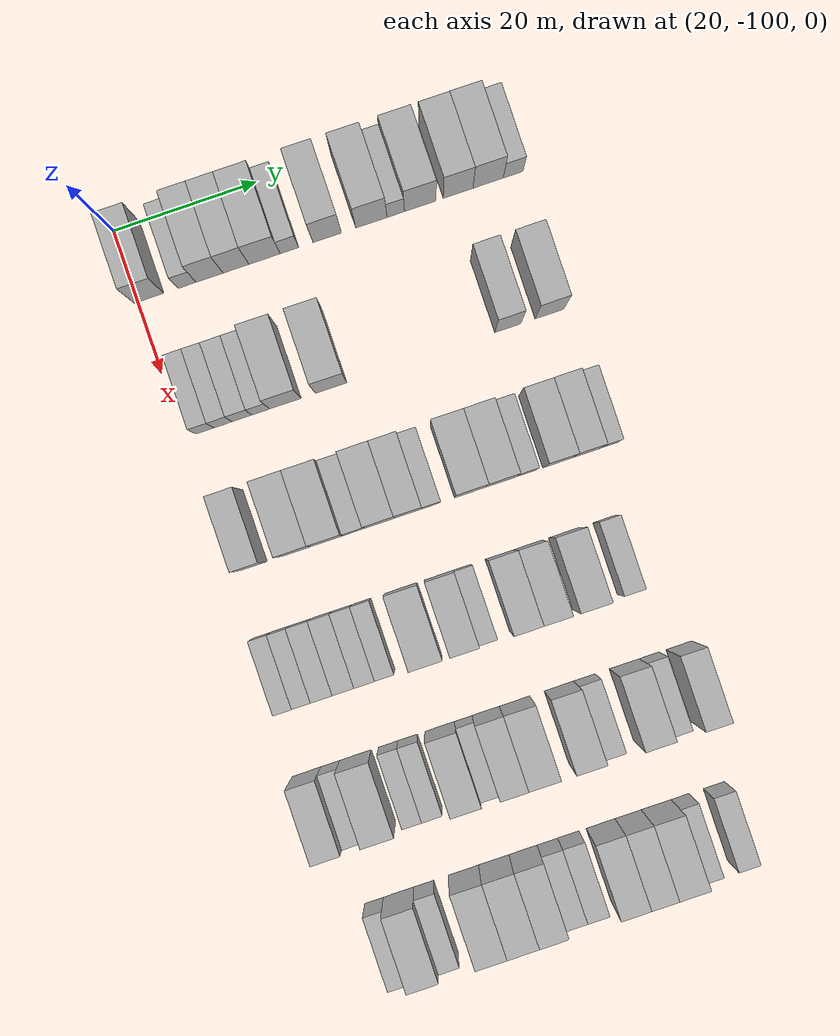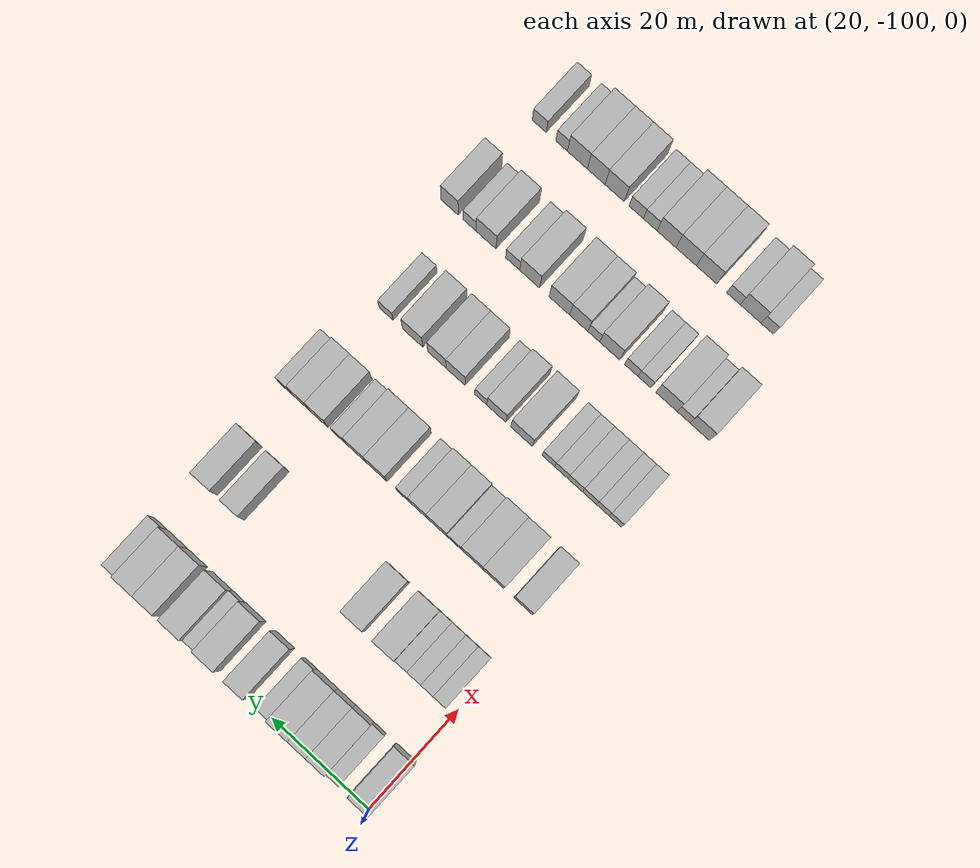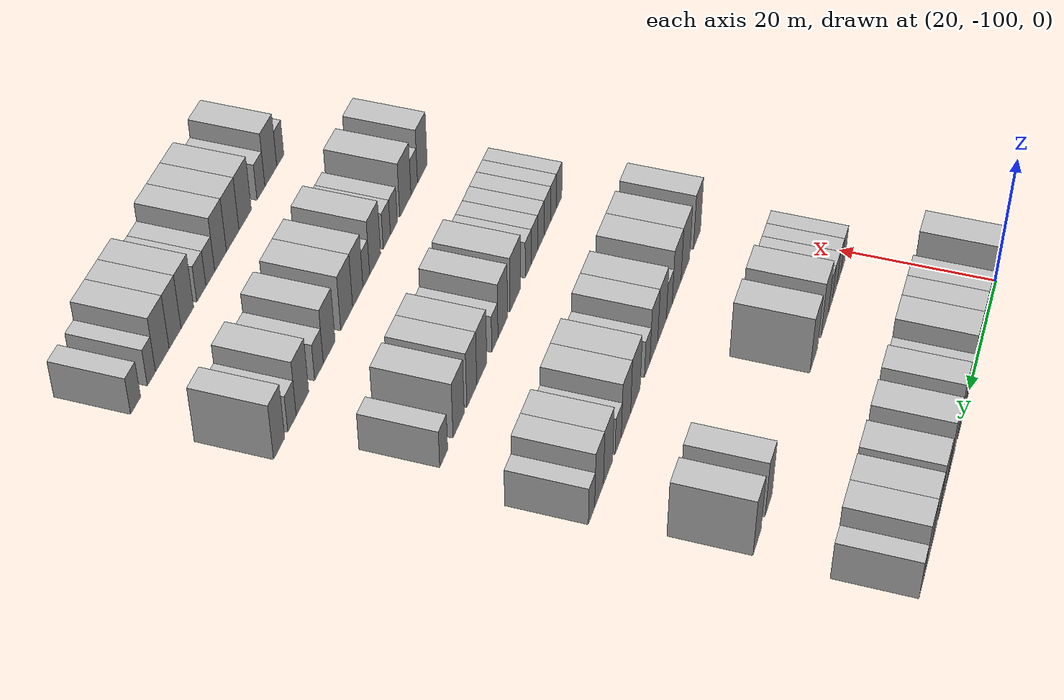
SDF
<sdf version="1.6">
 <world name="default">
  <model name="building_61">
   <static>1</static>
   <pose>25.0000 -98.3839 0 0.000000 0.000000 0.000000</pose>
   <link name="link">
    <pose>0 0 4.50 0 0 0</pose>
    <collision name="collision"><geometry><box><size>10.0000 4.1209 9.0000</size></box></geometry></collision>
    <visual name="visual">
     <cast_shadows>0</cast_shadows>
     <geometry><box><size>10.0000 4.1209 9.0000</size></box></geometry>
     <material>
      <script>
       <uri>model://HANNAS_wall/materials/scripts</uri>
       <uri>model://HANNAS_wall/materials/textures</uri>
       <name>vrc/HANNAS_wall</name>
      </script>
     </material>
    </visual>
   </link>
  </model>
  <model name="building_62">
   <static>1</static>
   <pose>25.0000 -93.0656 0 0.000000 0.000000 0.000000</pose>
   <link name="link">
    <pose>0 0 3.00 0 0 0</pose>
    <collision name="collision"><geometry><box><size>10.0000 2.5155 6.0000</size></box></geometry></collision>
    <visual name="visual">
     <cast_shadows>0</cast_shadows>
     <geometry><box><size>10.0000 2.5155 6.0000</size></box></geometry>
     <material>
      <script>
       <uri>model://HANNAS_wall/materials/scripts</uri>
       <uri>model://HANNAS_wall/materials/textures</uri>
       <name>vrc/HANNAS_wall</name>
      </script>
     </material>
    </visual>
   </link>
  </model>
  <model name="building_63">
   <static>1</static>
   <pose>25.0000 -89.9229 0 0.000000 0.000000 0.000000</pose>
   <link name="link">
    <pose>0 0 4.50 0 0 0</pose>
    <collision name="collision"><geometry><box><size>10.0000 3.7698 9.0000</size></box></geometry></collision>
    <visual name="visual">
     <cast_shadows>0</cast_shadows>
     <geometry><box><size>10.0000 3.7698 9.0000</size></box></geometry>
     <material>
      <script>
       <uri>model://HANNAS_wall/materials/scripts</uri>
       <uri>model://HANNAS_wall/materials/textures</uri>
       <name>vrc/HANNAS_wall</name>
      </script>
     </material>
    </visual>
   </link>
  </model>
  <model name="building_64">
   <static>1</static>
   <pose>25.0000 -86.2341 0 0.000000 0.000000 0.000000</pose>
   <link name="link">
    <pose>0 0 4.50 0 0 0</pose>
    <collision name="collision"><geometry><box><size>10.0000 3.6079 9.0000</size></box></geometry></collision>
    <visual name="visual">
     <cast_shadows>0</cast_shadows>
     <geometry><box><size>10.0000 3.6079 9.0000</size></box></geometry>
     <material>
      <script>
       <uri>model://HANNAS_wall/materials/scripts</uri>
       <uri>model://HANNAS_wall/materials/textures</uri>
       <name>vrc/HANNAS_wall</name>
      </script>
     </material>
    </visual>
   </link>
  </model>
  <model name="building_65">
   <static>1</static>
   <pose>25.0000 -82.2392 0 0.000000 0.000000 0.000000</pose>
   <link name="link">
    <pose>0 0 4.50 0 0 0</pose>
    <collision name="collision"><geometry><box><size>10.0000 4.3819 9.0000</size></box></geometry></collision>
    <visual name="visual">
     <cast_shadows>0</cast_shadows>
     <geometry><box><size>10.0000 4.3819 9.0000</size></box></geometry>
     <material>
      <script>
       <uri>model://HANNAS_wall/materials/scripts</uri>
       <uri>model://HANNAS_wall/materials/textures</uri>
       <name>vrc/HANNAS_wall</name>
      </script>
     </material>
    </visual>
   </link>
  </model>
  <model name="building_66">
   <static>1</static>
   <pose>25.0000 -78.7629 0 0.000000 0.000000 0.000000</pose>
   <link name="link">
    <pose>0 0 3.00 0 0 0</pose>
    <collision name="collision"><geometry><box><size>10.0000 2.5707 6.0000</size></box></geometry></collision>
    <visual name="visual">
     <cast_shadows>0</cast_shadows>
     <geometry><box><size>10.0000 2.5707 6.0000</size></box></geometry>
     <material>
      <script>
       <uri>model://HANNAS_wall/materials/scripts</uri>
       <uri>model://HANNAS_wall/materials/textures</uri>
       <name>vrc/HANNAS_wall</name>
      </script>
     </material>
    </visual>
   </link>
  </model>
  <model name="building_67">
   <static>1</static>
   <pose>25.0000 -73.4974 0 0.000000 0.000000 0.000000</pose>
   <link name="link">
    <pose>0 0 4.50 0 0 0</pose>
    <collision name="collision"><geometry><box><size>10.0000 3.9603 9.0000</size></box></geometry></collision>
    <visual name="visual">
     <cast_shadows>0</cast_shadows>
     <geometry><box><size>10.0000 3.9603 9.0000</size></box></geometry>
     <material>
      <script>
       <uri>model://HANNAS_wall/materials/scripts</uri>
       <uri>model://HANNAS_wall/materials/textures</uri>
       <name>vrc/HANNAS_wall</name>
      </script>
     </material>
    </visual>
   </link>
  </model>
  <model name="building_68">
   <static>1</static>
   <pose>25.0000 -67.3333 0 0.000000 0.000000 0.000000</pose>
   <link name="link">
    <pose>0 0 4.50 0 0 0</pose>
    <collision name="collision"><geometry><box><size>10.0000 4.3679 9.0000</size></box></geometry></collision>
    <visual name="visual">
     <cast_shadows>0</cast_shadows>
     <geometry><box><size>10.0000 4.3679 9.0000</size></box></geometry>
     <material>
      <script>
       <uri>model://HANNAS_wall/materials/scripts</uri>
       <uri>model://HANNAS_wall/materials/textures</uri>
       <name>vrc/HANNAS_wall</name>
      </script>
     </material>
    </visual>
   </link>
  </model>
  <model name="building_69">
   <static>1</static>
   <pose>25.0000 -63.9285 0 0.000000 0.000000 0.000000</pose>
   <link name="link">
    <pose>0 0 3.00 0 0 0</pose>
    <collision name="collision"><geometry><box><size>10.0000 2.4416 6.0000</size></box></geometry></collision>
    <visual name="visual">
     <cast_shadows>0</cast_shadows>
     <geometry><box><size>10.0000 2.4416 6.0000</size></box></geometry>
     <material>
      <script>
       <uri>model://HANNAS_wall/materials/scripts</uri>
       <uri>model://HANNAS_wall/materials/textures</uri>
       <name>vrc/HANNAS_wall</name>
      </script>
     </material>
    </visual>
   </link>
  </model>
  <model name="building_70">
   <static>1</static>
   <pose>25.0000 -60.5088 0 0.000000 0.000000 0.000000</pose>
   <link name="link">
    <pose>0 0 4.50 0 0 0</pose>
    <collision name="collision"><geometry><box><size>10.0000 4.3978 9.0000</size></box></geometry></collision>
    <visual name="visual">
     <cast_shadows>0</cast_shadows>
     <geometry><box><size>10.0000 4.3978 9.0000</size></box></geometry>
     <material>
      <script>
       <uri>model://HANNAS_wall/materials/scripts</uri>
       <uri>model://HANNAS_wall/materials/textures</uri>
       <name>vrc/HANNAS_wall</name>
      </script>
     </material>
    </visual>
   </link>
  </model>
  <model name="building_71">
   <static>1</static>
   <pose>25.0000 -55.2365 0 0.000000 0.000000 0.000000</pose>
   <link name="link">
    <pose>0 0 4.50 0 0 0</pose>
    <collision name="collision"><geometry><box><size>10.0000 4.1468 9.0000</size></box></geometry></collision>
    <visual name="visual">
     <cast_shadows>0</cast_shadows>
     <geometry><box><size>10.0000 4.1468 9.0000</size></box></geometry>
     <material>
      <script>
       <uri>model://HANNAS_wall/materials/scripts</uri>
       <uri>model://HANNAS_wall/materials/textures</uri>
       <name>vrc/HANNAS_wall</name>
      </script>
     </material>
    </visual>
   </link>
  </model>
  <model name="building_72">
   <static>1</static>
   <pose>25.0000 -51.0389 0 0.000000 0.000000 0.000000</pose>
   <link name="link">
    <pose>0 0 4.50 0 0 0</pose>
    <collision name="collision"><geometry><box><size>10.0000 4.2485 9.0000</size></box></geometry></collision>
    <visual name="visual">
     <cast_shadows>0</cast_shadows>
     <geometry><box><size>10.0000 4.2485 9.0000</size></box></geometry>
     <material>
      <script>
       <uri>model://HANNAS_wall/materials/scripts</uri>
       <uri>model://HANNAS_wall/materials/textures</uri>
       <name>vrc/HANNAS_wall</name>
      </script>
     </material>
    </visual>
   </link>
  </model>
  <model name="building_73">
   <static>1</static>
   <pose>25.0000 -47.5366 0 0.000000 0.000000 0.000000</pose>
   <link name="link">
    <pose>0 0 3.00 0 0 0</pose>
    <collision name="collision"><geometry><box><size>10.0000 2.7559 6.0000</size></box></geometry></collision>
    <visual name="visual">
     <cast_shadows>0</cast_shadows>
     <geometry><box><size>10.0000 2.7559 6.0000</size></box></geometry>
     <material>
      <script>
       <uri>model://HANNAS_wall/materials/scripts</uri>
       <uri>model://HANNAS_wall/materials/textures</uri>
       <name>vrc/HANNAS_wall</name>
      </script>
     </material>
    </visual>
   </link>
  </model>
  <model name="building_241">
   <static>1</static>
   <pose>44.0000 -96.9833 0 0.000000 0.000000 0.000000</pose>
   <link name="link">
    <pose>0 0 3.00 0 0 0</pose>
    <collision name="collision"><geometry><box><size>10.0000 2.5316 6.0000</size></box></geometry></collision>
    <visual name="visual">
     <cast_shadows>0</cast_shadows>
     <geometry><box><size>10.0000 2.5316 6.0000</size></box></geometry>
     <material>
      <script>
       <uri>model://HANNAS_wall/materials/scripts</uri>
       <uri>model://HANNAS_wall/materials/textures</uri>
       <name>vrc/HANNAS_wall</name>
      </script>
     </material>
    </visual>
   </link>
  </model>
  <model name="building_242">
   <static>1</static>
   <pose>44.0000 -94.4695 0 0.000000 0.000000 0.000000</pose>
   <link name="link">
    <pose>0 0 3.00 0 0 0</pose>
    <collision name="collision"><geometry><box><size>10.0000 2.4959 6.0000</size></box></geometry></collision>
    <visual name="visual">
     <cast_shadows>0</cast_shadows>
     <geometry><box><size>10.0000 2.4959 6.0000</size></box></geometry>
     <material>
      <script>
       <uri>model://HANNAS_wall/materials/scripts</uri>
       <uri>model://HANNAS_wall/materials/textures</uri>
       <name>vrc/HANNAS_wall</name>
      </script>
     </material>
    </visual>
   </link>
  </model>
  <model name="building_243">
   <static>1</static>
   <pose>44.0000 -91.8361 0 0.000000 0.000000 0.000000</pose>
   <link name="link">
    <pose>0 0 3.00 0 0 0</pose>
    <collision name="collision"><geometry><box><size>10.0000 2.7709 6.0000</size></box></geometry></collision>
    <visual name="visual">
     <cast_shadows>0</cast_shadows>
     <geometry><box><size>10.0000 2.7709 6.0000</size></box></geometry>
     <material>
      <script>
       <uri>model://HANNAS_wall/materials/scripts</uri>
       <uri>model://HANNAS_wall/materials/textures</uri>
       <name>vrc/HANNAS_wall</name>
      </script>
     </material>
    </visual>
   </link>
  </model>
  <model name="building_244">
   <static>1</static>
   <pose>44.0000 -89.2175 0 0.000000 0.000000 0.000000</pose>
   <link name="link">
    <pose>0 0 3.00 0 0 0</pose>
    <collision name="collision"><geometry><box><size>10.0000 2.4664 6.0000</size></box></geometry></collision>
    <visual name="visual">
     <cast_shadows>0</cast_shadows>
     <geometry><box><size>10.0000 2.4664 6.0000</size></box></geometry>
     <material>
      <script>
       <uri>model://HANNAS_wall/materials/scripts</uri>
       <uri>model://HANNAS_wall/materials/textures</uri>
       <name>vrc/HANNAS_wall</name>
      </script>
     </material>
    </visual>
   </link>
  </model>
  <model name="building_245">
   <static>1</static>
   <pose>44.0000 -85.7880 0 0.000000 0.000000 0.000000</pose>
   <link name="link">
    <pose>0 0 4.50 0 0 0</pose>
    <collision name="collision"><geometry><box><size>10.0000 4.3926 9.0000</size></box></geometry></collision>
    <visual name="visual">
     <cast_shadows>0</cast_shadows>
     <geometry><box><size>10.0000 4.3926 9.0000</size></box></geometry>
     <material>
      <script>
       <uri>model://HANNAS_wall/materials/scripts</uri>
       <uri>model://HANNAS_wall/materials/textures</uri>
       <name>vrc/HANNAS_wall</name>
      </script>
     </material>
    </visual>
   </link>
  </model>
  <model name="building_246">
   <static>1</static>
   <pose>44.0000 -79.3942 0 0.000000 0.000000 0.000000</pose>
   <link name="link">
    <pose>0 0 4.50 0 0 0</pose>
    <collision name="collision"><geometry><box><size>10.0000 4.3949 9.0000</size></box></geometry></collision>
    <visual name="visual">
     <cast_shadows>0</cast_shadows>
     <geometry><box><size>10.0000 4.3949 9.0000</size></box></geometry>
     <material>
      <script>
       <uri>model://HANNAS_wall/materials/scripts</uri>
       <uri>model://HANNAS_wall/materials/textures</uri>
       <name>vrc/HANNAS_wall</name>
      </script>
     </material>
    </visual>
   </link>
  </model>
  <model name="building_247">
   <static>1</static>
   <pose>44.0000 -54.7488 0 0.000000 0.000000 0.000000</pose>
   <link name="link">
    <pose>0 0 4.50 0 0 0</pose>
    <collision name="collision"><geometry><box><size>10.0000 3.6320 9.0000</size></box></geometry></collision>
    <visual name="visual">
     <cast_shadows>0</cast_shadows>
     <geometry><box><size>10.0000 3.6320 9.0000</size></box></geometry>
     <material>
      <script>
       <uri>model://HANNAS_wall/materials/scripts</uri>
       <uri>model://HANNAS_wall/materials/textures</uri>
       <name>vrc/HANNAS_wall</name>
      </script>
     </material>
    </visual>
   </link>
  </model>
  <model name="building_248">
   <static>1</static>
   <pose>44.0000 -48.9258 0 0.000000 0.000000 0.000000</pose>
   <link name="link">
    <pose>0 0 4.50 0 0 0</pose>
    <collision name="collision"><geometry><box><size>10.0000 4.0141 9.0000</size></box></geometry></collision>
    <visual name="visual">
     <cast_shadows>0</cast_shadows>
     <geometry><box><size>10.0000 4.0141 9.0000</size></box></geometry>
     <material>
      <script>
       <uri>model://HANNAS_wall/materials/scripts</uri>
       <uri>model://HANNAS_wall/materials/textures</uri>
       <name>vrc/HANNAS_wall</name>
      </script>
     </material>
    </visual>
   </link>
  </model>
  <model name="building_402">
   <static>1</static>
   <pose>63.0000 -96.6585 0 0.000000 0.000000 0.000000</pose>
   <link name="link">
    <pose>0 0 4.50 0 0 0</pose>
    <collision name="collision"><geometry><box><size>10.0000 3.7374 9.0000</size></box></geometry></collision>
    <visual name="visual">
     <cast_shadows>0</cast_shadows>
     <geometry><box><size>10.0000 3.7374 9.0000</size></box></geometry>
     <material>
      <script>
       <uri>model://HANNAS_wall/materials/scripts</uri>
       <uri>model://HANNAS_wall/materials/textures</uri>
       <name>vrc/HANNAS_wall</name>
      </script>
     </material>
    </visual>
   </link>
  </model>
  <model name="building_403">
   <static>1</static>
   <pose>63.0000 -90.5858 0 0.000000 0.000000 0.000000</pose>
   <link name="link">
    <pose>0 0 4.50 0 0 0</pose>
    <collision name="collision"><geometry><box><size>10.0000 4.4079 9.0000</size></box></geometry></collision>
    <visual name="visual">
     <cast_shadows>0</cast_shadows>
     <geometry><box><size>10.0000 4.4079 9.0000</size></box></geometry>
     <material>
      <script>
       <uri>model://HANNAS_wall/materials/scripts</uri>
       <uri>model://HANNAS_wall/materials/textures</uri>
       <name>vrc/HANNAS_wall</name>
      </script>
     </material>
    </visual>
   </link>
  </model>
  <model name="building_404">
   <static>1</static>
   <pose>63.0000 -86.1868 0 0.000000 0.000000 0.000000</pose>
   <link name="link">
    <pose>0 0 4.50 0 0 0</pose>
    <collision name="collision"><geometry><box><size>10.0000 4.3902 9.0000</size></box></geometry></collision>
    <visual name="visual">
     <cast_shadows>0</cast_shadows>
     <geometry><box><size>10.0000 4.3902 9.0000</size></box></geometry>
     <material>
      <script>
       <uri>model://HANNAS_wall/materials/scripts</uri>
       <uri>model://HANNAS_wall/materials/textures</uri>
       <name>vrc/HANNAS_wall</name>
      </script>
     </material>
    </visual>
   </link>
  </model>
  <model name="building_405">
   <static>1</static>
   <pose>63.0000 -82.5322 0 0.000000 0.000000 0.000000</pose>
   <link name="link">
    <pose>0 0 3.00 0 0 0</pose>
    <collision name="collision"><geometry><box><size>10.0000 2.9188 6.0000</size></box></geometry></collision>
    <visual name="visual">
     <cast_shadows>0</cast_shadows>
     <geometry><box><size>10.0000 2.9188 6.0000</size></box></geometry>
     <material>
      <script>
       <uri>model://HANNAS_wall/materials/scripts</uri>
       <uri>model://HANNAS_wall/materials/textures</uri>
       <name>vrc/HANNAS_wall</name>
      </script>
     </material>
    </visual>
   </link>
  </model>
  <model name="building_406">
   <static>1</static>
   <pose>63.0000 -78.9898 0 0.000000 0.000000 0.000000</pose>
   <link name="link">
    <pose>0 0 4.50 0 0 0</pose>
    <collision name="collision"><geometry><box><size>10.0000 4.1660 9.0000</size></box></geometry></collision>
    <visual name="visual">
     <cast_shadows>0</cast_shadows>
     <geometry><box><size>10.0000 4.1660 9.0000</size></box></geometry>
     <material>
      <script>
       <uri>model://HANNAS_wall/materials/scripts</uri>
       <uri>model://HANNAS_wall/materials/textures</uri>
       <name>vrc/HANNAS_wall</name>
      </script>
     </material>
    </visual>
   </link>
  </model>
  <model name="building_407">
   <static>1</static>
   <pose>63.0000 -75.0426 0 0.000000 0.000000 0.000000</pose>
   <link name="link">
    <pose>0 0 4.50 0 0 0</pose>
    <collision name="collision"><geometry><box><size>10.0000 3.7285 9.0000</size></box></geometry></collision>
    <visual name="visual">
     <cast_shadows>0</cast_shadows>
     <geometry><box><size>10.0000 3.7285 9.0000</size></box></geometry>
     <material>
      <script>
       <uri>model://HANNAS_wall/materials/scripts</uri>
       <uri>model://HANNAS_wall/materials/textures</uri>
       <name>vrc/HANNAS_wall</name>
      </script>
     </material>
    </visual>
   </link>
  </model>
  <model name="building_408">
   <static>1</static>
   <pose>63.0000 -71.9043 0 0.000000 0.000000 0.000000</pose>
   <link name="link">
    <pose>0 0 3.00 0 0 0</pose>
    <collision name="collision"><geometry><box><size>10.0000 2.5481 6.0000</size></box></geometry></collision>
    <visual name="visual">
     <cast_shadows>0</cast_shadows>
     <geometry><box><size>10.0000 2.5481 6.0000</size></box></geometry>
     <material>
      <script>
       <uri>model://HANNAS_wall/materials/scripts</uri>
       <uri>model://HANNAS_wall/materials/textures</uri>
       <name>vrc/HANNAS_wall</name>
      </script>
     </material>
    </visual>
   </link>
  </model>
  <model name="building_409">
   <static>1</static>
   <pose>63.0000 -66.4389 0 0.000000 0.000000 0.000000</pose>
   <link name="link">
    <pose>0 0 4.50 0 0 0</pose>
    <collision name="collision"><geometry><box><size>10.0000 4.3826 9.0000</size></box></geometry></collision>
    <visual name="visual">
     <cast_shadows>0</cast_shadows>
     <geometry><box><size>10.0000 4.3826 9.0000</size></box></geometry>
     <material>
      <script>
       <uri>model://HANNAS_wall/materials/scripts</uri>
       <uri>model://HANNAS_wall/materials/textures</uri>
       <name>vrc/HANNAS_wall</name>
      </script>
     </material>
    </visual>
   </link>
  </model>
  <model name="building_410">
   <static>1</static>
   <pose>63.0000 -62.1601 0 0.000000 0.000000 0.000000</pose>
   <link name="link">
    <pose>0 0 4.50 0 0 0</pose>
    <collision name="collision"><geometry><box><size>10.0000 4.1752 9.0000</size></box></geometry></collision>
    <visual name="visual">
     <cast_shadows>0</cast_shadows>
     <geometry><box><size>10.0000 4.1752 9.0000</size></box></geometry>
     <material>
      <script>
       <uri>model://HANNAS_wall/materials/scripts</uri>
       <uri>model://HANNAS_wall/materials/textures</uri>
       <name>vrc/HANNAS_wall</name>
      </script>
     </material>
    </visual>
   </link>
  </model>
  <model name="building_411">
   <static>1</static>
   <pose>63.0000 -58.6900 0 0.000000 0.000000 0.000000</pose>
   <link name="link">
    <pose>0 0 3.00 0 0 0</pose>
    <collision name="collision"><geometry><box><size>10.0000 2.7649 6.0000</size></box></geometry></collision>
    <visual name="visual">
     <cast_shadows>0</cast_shadows>
     <geometry><box><size>10.0000 2.7649 6.0000</size></box></geometry>
     <material>
      <script>
       <uri>model://HANNAS_wall/materials/scripts</uri>
       <uri>model://HANNAS_wall/materials/textures</uri>
       <name>vrc/HANNAS_wall</name>
      </script>
     </material>
    </visual>
   </link>
  </model>
  <model name="building_412">
   <static>1</static>
   <pose>63.0000 -54.3069 0 0.000000 0.000000 0.000000</pose>
   <link name="link">
    <pose>0 0 4.50 0 0 0</pose>
    <collision name="collision"><geometry><box><size>10.0000 4.0014 9.0000</size></box></geometry></collision>
    <visual name="visual">
     <cast_shadows>0</cast_shadows>
     <geometry><box><size>10.0000 4.0014 9.0000</size></box></geometry>
     <material>
      <script>
       <uri>model://HANNAS_wall/materials/scripts</uri>
       <uri>model://HANNAS_wall/materials/textures</uri>
       <name>vrc/HANNAS_wall</name>
      </script>
     </material>
    </visual>
   </link>
  </model>
  <model name="building_413">
   <static>1</static>
   <pose>63.0000 -50.4531 0 0.000000 0.000000 0.000000</pose>
   <link name="link">
    <pose>0 0 4.50 0 0 0</pose>
    <collision name="collision"><geometry><box><size>10.0000 3.7063 9.0000</size></box></geometry></collision>
    <visual name="visual">
     <cast_shadows>0</cast_shadows>
     <geometry><box><size>10.0000 3.7063 9.0000</size></box></geometry>
     <material>
      <script>
       <uri>model://HANNAS_wall/materials/scripts</uri>
       <uri>model://HANNAS_wall/materials/textures</uri>
       <name>vrc/HANNAS_wall</name>
      </script>
     </material>
    </visual>
   </link>
  </model>
  <model name="building_414">
   <static>1</static>
   <pose>63.0000 -47.2876 0 0.000000 0.000000 0.000000</pose>
   <link name="link">
    <pose>0 0 3.00 0 0 0</pose>
    <collision name="collision"><geometry><box><size>10.0000 2.6246 6.0000</size></box></geometry></collision>
    <visual name="visual">
     <cast_shadows>0</cast_shadows>
     <geometry><box><size>10.0000 2.6246 6.0000</size></box></geometry>
     <material>
      <script>
       <uri>model://HANNAS_wall/materials/scripts</uri>
       <uri>model://HANNAS_wall/materials/textures</uri>
       <name>vrc/HANNAS_wall</name>
      </script>
     </material>
    </visual>
   </link>
  </model>
  <model name="building_580">
   <static>1</static>
   <pose>82.0000 -98.4055 0 0.000000 0.000000 0.000000</pose>
   <link name="link">
    <pose>0 0 3.00 0 0 0</pose>
    <collision name="collision"><geometry><box><size>10.0000 2.5331 6.0000</size></box></geometry></collision>
    <visual name="visual">
     <cast_shadows>0</cast_shadows>
     <geometry><box><size>10.0000 2.5331 6.0000</size></box></geometry>
     <material>
      <script>
       <uri>model://HANNAS_wall/materials/scripts</uri>
       <uri>model://HANNAS_wall/materials/textures</uri>
       <name>vrc/HANNAS_wall</name>
      </script>
     </material>
    </visual>
   </link>
  </model>
  <model name="building_581">
   <static>1</static>
   <pose>82.0000 -95.8705 0 0.000000 0.000000 0.000000</pose>
   <link name="link">
    <pose>0 0 3.00 0 0 0</pose>
    <collision name="collision"><geometry><box><size>10.0000 2.5369 6.0000</size></box></geometry></collision>
    <visual name="visual">
     <cast_shadows>0</cast_shadows>
     <geometry><box><size>10.0000 2.5369 6.0000</size></box></geometry>
     <material>
      <script>
       <uri>model://HANNAS_wall/materials/scripts</uri>
       <uri>model://HANNAS_wall/materials/textures</uri>
       <name>vrc/HANNAS_wall</name>
      </script>
     </material>
    </visual>
   </link>
  </model>
  <model name="building_582">
   <static>1</static>
   <pose>82.0000 -93.1329 0 0.000000 0.000000 0.000000</pose>
   <link name="link">
    <pose>0 0 3.00 0 0 0</pose>
    <collision name="collision"><geometry><box><size>10.0000 2.9382 6.0000</size></box></geometry></collision>
    <visual name="visual">
     <cast_shadows>0</cast_shadows>
     <geometry><box><size>10.0000 2.9382 6.0000</size></box></geometry>
     <material>
      <script>
       <uri>model://HANNAS_wall/materials/scripts</uri>
       <uri>model://HANNAS_wall/materials/textures</uri>
       <name>vrc/HANNAS_wall</name>
      </script>
     </material>
    </visual>
   </link>
  </model>
  <model name="building_583">
   <static>1</static>
   <pose>82.0000 -90.2023 0 0.000000 0.000000 0.000000</pose>
   <link name="link">
    <pose>0 0 3.00 0 0 0</pose>
    <collision name="collision"><geometry><box><size>10.0000 2.9230 6.0000</size></box></geometry></collision>
    <visual name="visual">
     <cast_shadows>0</cast_shadows>
     <geometry><box><size>10.0000 2.9230 6.0000</size></box></geometry>
     <material>
      <script>
       <uri>model://HANNAS_wall/materials/scripts</uri>
       <uri>model://HANNAS_wall/materials/textures</uri>
       <name>vrc/HANNAS_wall</name>
      </script>
     </material>
    </visual>
   </link>
  </model>
  <model name="building_584">
   <static>1</static>
   <pose>82.0000 -87.3582 0 0.000000 0.000000 0.000000</pose>
   <link name="link">
    <pose>0 0 3.00 0 0 0</pose>
    <collision name="collision"><geometry><box><size>10.0000 2.7652 6.0000</size></box></geometry></collision>
    <visual name="visual">
     <cast_shadows>0</cast_shadows>
     <geometry><box><size>10.0000 2.7652 6.0000</size></box></geometry>
     <material>
      <script>
       <uri>model://HANNAS_wall/materials/scripts</uri>
       <uri>model://HANNAS_wall/materials/textures</uri>
       <name>vrc/HANNAS_wall</name>
      </script>
     </material>
    </visual>
   </link>
  </model>
  <model name="building_585">
   <static>1</static>
   <pose>82.0000 -84.6752 0 0.000000 0.000000 0.000000</pose>
   <link name="link">
    <pose>0 0 3.00 0 0 0</pose>
    <collision name="collision"><geometry><box><size>10.0000 2.6009 6.0000</size></box></geometry></collision>
    <visual name="visual">
     <cast_shadows>0</cast_shadows>
     <geometry><box><size>10.0000 2.6009 6.0000</size></box></geometry>
     <material>
      <script>
       <uri>model://HANNAS_wall/materials/scripts</uri>
       <uri>model://HANNAS_wall/materials/textures</uri>
       <name>vrc/HANNAS_wall</name>
      </script>
     </material>
    </visual>
   </link>
  </model>
  <model name="building_586">
   <static>1</static>
   <pose>82.0000 -79.1324 0 0.000000 0.000000 0.000000</pose>
   <link name="link">
    <pose>0 0 4.50 0 0 0</pose>
    <collision name="collision"><geometry><box><size>10.0000 4.4848 9.0000</size></box></geometry></collision>
    <visual name="visual">
     <cast_shadows>0</cast_shadows>
     <geometry><box><size>10.0000 4.4848 9.0000</size></box></geometry>
     <material>
      <script>
       <uri>model://HANNAS_wall/materials/scripts</uri>
       <uri>model://HANNAS_wall/materials/textures</uri>
       <name>vrc/HANNAS_wall</name>
      </script>
     </material>
    </visual>
   </link>
  </model>
  <model name="building_587">
   <static>1</static>
   <pose>82.0000 -73.9214 0 0.000000 0.000000 0.000000</pose>
   <link name="link">
    <pose>0 0 4.50 0 0 0</pose>
    <collision name="collision"><geometry><box><size>10.0000 3.9371 9.0000</size></box></geometry></collision>
    <visual name="visual">
     <cast_shadows>0</cast_shadows>
     <geometry><box><size>10.0000 3.9371 9.0000</size></box></geometry>
     <material>
      <script>
       <uri>model://HANNAS_wall/materials/scripts</uri>
       <uri>model://HANNAS_wall/materials/textures</uri>
       <name>vrc/HANNAS_wall</name>
      </script>
     </material>
    </visual>
   </link>
  </model>
  <model name="building_588">
   <static>1</static>
   <pose>82.0000 -70.6855 0 0.000000 0.000000 0.000000</pose>
   <link name="link">
    <pose>0 0 3.00 0 0 0</pose>
    <collision name="collision"><geometry><box><size>10.0000 2.5346 6.0000</size></box></geometry></collision>
    <visual name="visual">
     <cast_shadows>0</cast_shadows>
     <geometry><box><size>10.0000 2.5346 6.0000</size></box></geometry>
     <material>
      <script>
       <uri>model://HANNAS_wall/materials/scripts</uri>
       <uri>model://HANNAS_wall/materials/textures</uri>
       <name>vrc/HANNAS_wall</name>
      </script>
     </material>
    </visual>
   </link>
  </model>
  <model name="building_589">
   <static>1</static>
   <pose>82.0000 -65.4392 0 0.000000 0.000000 0.000000</pose>
   <link name="link">
    <pose>0 0 4.50 0 0 0</pose>
    <collision name="collision"><geometry><box><size>10.0000 3.9580 9.0000</size></box></geometry></collision>
    <visual name="visual">
     <cast_shadows>0</cast_shadows>
     <geometry><box><size>10.0000 3.9580 9.0000</size></box></geometry>
     <material>
      <script>
       <uri>model://HANNAS_wall/materials/scripts</uri>
       <uri>model://HANNAS_wall/materials/textures</uri>
       <name>vrc/HANNAS_wall</name>
      </script>
     </material>
    </visual>
   </link>
  </model>
  <model name="building_590">
   <static>1</static>
   <pose>82.0000 -61.5257 0 0.000000 0.000000 0.000000</pose>
   <link name="link">
    <pose>0 0 4.50 0 0 0</pose>
    <collision name="collision"><geometry><box><size>10.0000 3.8691 9.0000</size></box></geometry></collision>
    <visual name="visual">
     <cast_shadows>0</cast_shadows>
     <geometry><box><size>10.0000 3.8691 9.0000</size></box></geometry>
     <material>
      <script>
       <uri>model://HANNAS_wall/materials/scripts</uri>
       <uri>model://HANNAS_wall/materials/textures</uri>
       <name>vrc/HANNAS_wall</name>
      </script>
     </material>
    </visual>
   </link>
  </model>
  <model name="building_591">
   <static>1</static>
   <pose>82.0000 -56.4722 0 0.000000 0.000000 0.000000</pose>
   <link name="link">
    <pose>0 0 4.50 0 0 0</pose>
    <collision name="collision"><geometry><box><size>10.0000 4.2379 9.0000</size></box></geometry></collision>
    <visual name="visual">
     <cast_shadows>0</cast_shadows>
     <geometry><box><size>10.0000 4.2379 9.0000</size></box></geometry>
     <material>
      <script>
       <uri>model://HANNAS_wall/materials/scripts</uri>
       <uri>model://HANNAS_wall/materials/textures</uri>
       <name>vrc/HANNAS_wall</name>
      </script>
     </material>
    </visual>
   </link>
  </model>
  <model name="building_592">
   <static>1</static>
   <pose>82.0000 -50.8879 0 0.000000 0.000000 0.000000</pose>
   <link name="link">
    <pose>0 0 3.00 0 0 0</pose>
    <collision name="collision"><geometry><box><size>10.0000 2.9308 6.0000</size></box></geometry></collision>
    <visual name="visual">
     <cast_shadows>0</cast_shadows>
     <geometry><box><size>10.0000 2.9308 6.0000</size></box></geometry>
     <material>
      <script>
       <uri>model://HANNAS_wall/materials/scripts</uri>
       <uri>model://HANNAS_wall/materials/textures</uri>
       <name>vrc/HANNAS_wall</name>
      </script>
     </material>
    </visual>
   </link>
  </model>
  <model name="building_754">
   <static>1</static>
   <pose>101.0000 -98.8011 0 0.000000 0.000000 0.000000</pose>
   <link name="link">
    <pose>0 0 4.50 0 0 0</pose>
    <collision name="collision"><geometry><box><size>10.0000 3.9589 9.0000</size></box></geometry></collision>
    <visual name="visual">
     <cast_shadows>0</cast_shadows>
     <geometry><box><size>10.0000 3.9589 9.0000</size></box></geometry>
     <material>
      <script>
       <uri>model://HANNAS_wall/materials/scripts</uri>
       <uri>model://HANNAS_wall/materials/textures</uri>
       <name>vrc/HANNAS_wall</name>
      </script>
     </material>
    </visual>
   </link>
  </model>
  <model name="building_755">
   <static>1</static>
   <pose>101.0000 -95.5059 0 0.000000 0.000000 0.000000</pose>
   <link name="link">
    <pose>0 0 3.00 0 0 0</pose>
    <collision name="collision"><geometry><box><size>10.0000 2.6314 6.0000</size></box></geometry></collision>
    <visual name="visual">
     <cast_shadows>0</cast_shadows>
     <geometry><box><size>10.0000 2.6314 6.0000</size></box></geometry>
     <material>
      <script>
       <uri>model://HANNAS_wall/materials/scripts</uri>
       <uri>model://HANNAS_wall/materials/textures</uri>
       <name>vrc/HANNAS_wall</name>
      </script>
     </material>
    </visual>
   </link>
  </model>
  <model name="building_756">
   <static>1</static>
   <pose>101.0000 -91.9707 0 0.000000 0.000000 0.000000</pose>
   <link name="link">
    <pose>0 0 4.50 0 0 0</pose>
    <collision name="collision"><geometry><box><size>10.0000 4.4390 9.0000</size></box></geometry></collision>
    <visual name="visual">
     <cast_shadows>0</cast_shadows>
     <geometry><box><size>10.0000 4.4390 9.0000</size></box></geometry>
     <material>
      <script>
       <uri>model://HANNAS_wall/materials/scripts</uri>
       <uri>model://HANNAS_wall/materials/textures</uri>
       <name>vrc/HANNAS_wall</name>
      </script>
     </material>
    </visual>
   </link>
  </model>
  <model name="building_757">
   <static>1</static>
   <pose>101.0000 -87.4184 0 0.000000 0.000000 0.000000</pose>
   <link name="link">
    <pose>0 0 3.00 0 0 0</pose>
    <collision name="collision"><geometry><box><size>10.0000 2.6656 6.0000</size></box></geometry></collision>
    <visual name="visual">
     <cast_shadows>0</cast_shadows>
     <geometry><box><size>10.0000 2.6656 6.0000</size></box></geometry>
     <material>
      <script>
       <uri>model://HANNAS_wall/materials/scripts</uri>
       <uri>model://HANNAS_wall/materials/textures</uri>
       <name>vrc/HANNAS_wall</name>
      </script>
     </material>
    </visual>
   </link>
  </model>
  <model name="building_758">
   <static>1</static>
   <pose>101.0000 -84.6972 0 0.000000 0.000000 0.000000</pose>
   <link name="link">
    <pose>0 0 3.00 0 0 0</pose>
    <collision name="collision"><geometry><box><size>10.0000 2.7768 6.0000</size></box></geometry></collision>
    <visual name="visual">
     <cast_shadows>0</cast_shadows>
     <geometry><box><size>10.0000 2.7768 6.0000</size></box></geometry>
     <material>
      <script>
       <uri>model://HANNAS_wall/materials/scripts</uri>
       <uri>model://HANNAS_wall/materials/textures</uri>
       <name>vrc/HANNAS_wall</name>
      </script>
     </material>
    </visual>
   </link>
  </model>
  <model name="building_759">
   <static>1</static>
   <pose>101.0000 -80.2395 0 0.000000 0.000000 0.000000</pose>
   <link name="link">
    <pose>0 0 4.50 0 0 0</pose>
    <collision name="collision"><geometry><box><size>10.0000 4.1386 9.0000</size></box></geometry></collision>
    <visual name="visual">
     <cast_shadows>0</cast_shadows>
     <geometry><box><size>10.0000 4.1386 9.0000</size></box></geometry>
     <material>
      <script>
       <uri>model://HANNAS_wall/materials/scripts</uri>
       <uri>model://HANNAS_wall/materials/textures</uri>
       <name>vrc/HANNAS_wall</name>
      </script>
     </material>
    </visual>
   </link>
  </model>
  <model name="building_760">
   <static>1</static>
   <pose>101.0000 -76.9405 0 0.000000 0.000000 0.000000</pose>
   <link name="link">
    <pose>0 0 3.00 0 0 0</pose>
    <collision name="collision"><geometry><box><size>10.0000 2.4595 6.0000</size></box></geometry></collision>
    <visual name="visual">
     <cast_shadows>0</cast_shadows>
     <geometry><box><size>10.0000 2.4595 6.0000</size></box></geometry>
     <material>
      <script>
       <uri>model://HANNAS_wall/materials/scripts</uri>
       <uri>model://HANNAS_wall/materials/textures</uri>
       <name>vrc/HANNAS_wall</name>
      </script>
     </material>
    </visual>
   </link>
  </model>
  <model name="building_761">
   <static>1</static>
   <pose>101.0000 -73.8116 0 0.000000 0.000000 0.000000</pose>
   <link name="link">
    <pose>0 0 4.50 0 0 0</pose>
    <collision name="collision"><geometry><box><size>10.0000 3.7982 9.0000</size></box></geometry></collision>
    <visual name="visual">
     <cast_shadows>0</cast_shadows>
     <geometry><box><size>10.0000 3.7982 9.0000</size></box></geometry>
     <material>
      <script>
       <uri>model://HANNAS_wall/materials/scripts</uri>
       <uri>model://HANNAS_wall/materials/textures</uri>
       <name>vrc/HANNAS_wall</name>
      </script>
     </material>
    </visual>
   </link>
  </model>
  <model name="building_762">
   <static>1</static>
   <pose>101.0000 -69.7663 0 0.000000 0.000000 0.000000</pose>
   <link name="link">
    <pose>0 0 4.50 0 0 0</pose>
    <collision name="collision"><geometry><box><size>10.0000 4.2925 9.0000</size></box></geometry></collision>
    <visual name="visual">
     <cast_shadows>0</cast_shadows>
     <geometry><box><size>10.0000 4.2925 9.0000</size></box></geometry>
     <material>
      <script>
       <uri>model://HANNAS_wall/materials/scripts</uri>
       <uri>model://HANNAS_wall/materials/textures</uri>
       <name>vrc/HANNAS_wall</name>
      </script>
     </material>
    </visual>
   </link>
  </model>
  <model name="building_763">
   <static>1</static>
   <pose>101.0000 -63.5661 0 0.000000 0.000000 0.000000</pose>
   <link name="link">
    <pose>0 0 4.50 0 0 0</pose>
    <collision name="collision"><geometry><box><size>10.0000 4.1079 9.0000</size></box></geometry></collision>
    <visual name="visual">
     <cast_shadows>0</cast_shadows>
     <geometry><box><size>10.0000 4.1079 9.0000</size></box></geometry>
     <material>
      <script>
       <uri>model://HANNAS_wall/materials/scripts</uri>
       <uri>model://HANNAS_wall/materials/textures</uri>
       <name>vrc/HANNAS_wall</name>
      </script>
     </material>
    </visual>
   </link>
  </model>
  <model name="building_764">
   <static>1</static>
   <pose>101.0000 -60.0208 0 0.000000 0.000000 0.000000</pose>
   <link name="link">
    <pose>0 0 3.00 0 0 0</pose>
    <collision name="collision"><geometry><box><size>10.0000 2.9827 6.0000</size></box></geometry></collision>
    <visual name="visual">
     <cast_shadows>0</cast_shadows>
     <geometry><box><size>10.0000 2.9827 6.0000</size></box></geometry>
     <material>
      <script>
       <uri>model://HANNAS_wall/materials/scripts</uri>
       <uri>model://HANNAS_wall/materials/textures</uri>
       <name>vrc/HANNAS_wall</name>
      </script>
     </material>
    </visual>
   </link>
  </model>
  <model name="building_765">
   <static>1</static>
   <pose>101.0000 -54.4438 0 0.000000 0.000000 0.000000</pose>
   <link name="link">
    <pose>0 0 4.50 0 0 0</pose>
    <collision name="collision"><geometry><box><size>10.0000 4.1711 9.0000</size></box></geometry></collision>
    <visual name="visual">
     <cast_shadows>0</cast_shadows>
     <geometry><box><size>10.0000 4.1711 9.0000</size></box></geometry>
     <material>
      <script>
       <uri>model://HANNAS_wall/materials/scripts</uri>
       <uri>model://HANNAS_wall/materials/textures</uri>
       <name>vrc/HANNAS_wall</name>
      </script>
     </material>
    </visual>
   </link>
  </model>
  <model name="building_766">
   <static>1</static>
   <pose>101.0000 -50.9728 0 0.000000 0.000000 0.000000</pose>
   <link name="link">
    <pose>0 0 3.00 0 0 0</pose>
    <collision name="collision"><geometry><box><size>10.0000 2.7710 6.0000</size></box></geometry></collision>
    <visual name="visual">
     <cast_shadows>0</cast_shadows>
     <geometry><box><size>10.0000 2.7710 6.0000</size></box></geometry>
     <material>
      <script>
       <uri>model://HANNAS_wall/materials/scripts</uri>
       <uri>model://HANNAS_wall/materials/textures</uri>
       <name>vrc/HANNAS_wall</name>
      </script>
     </material>
    </visual>
   </link>
  </model>
  <model name="building_767">
   <static>1</static>
   <pose>101.0000 -46.7859 0 0.000000 0.000000 0.000000</pose>
   <link name="link">
    <pose>0 0 4.50 0 0 0</pose>
    <collision name="collision"><geometry><box><size>10.0000 3.6029 9.0000</size></box></geometry></collision>
    <visual name="visual">
     <cast_shadows>0</cast_shadows>
     <geometry><box><size>10.0000 3.6029 9.0000</size></box></geometry>
     <material>
      <script>
       <uri>model://HANNAS_wall/materials/scripts</uri>
       <uri>model://HANNAS_wall/materials/textures</uri>
       <name>vrc/HANNAS_wall</name>
      </script>
     </material>
    </visual>
   </link>
  </model>
  <model name="building_932">
   <static>1</static>
   <pose>120.0000 -95.8464 0 0.000000 0.000000 0.000000</pose>
   <link name="link">
    <pose>0 0 3.00 0 0 0</pose>
    <collision name="collision"><geometry><box><size>10.0000 2.5710 6.0000</size></box></geometry></collision>
    <visual name="visual">
     <cast_shadows>0</cast_shadows>
     <geometry><box><size>10.0000 2.5710 6.0000</size></box></geometry>
     <material>
      <script>
       <uri>model://HANNAS_wall/materials/scripts</uri>
       <uri>model://HANNAS_wall/materials/textures</uri>
       <name>vrc/HANNAS_wall</name>
      </script>
     </material>
    </visual>
   </link>
  </model>
  <model name="building_933">
   <static>1</static>
   <pose>120.0000 -92.4311 0 0.000000 0.000000 0.000000</pose>
   <link name="link">
    <pose>0 0 4.50 0 0 0</pose>
    <collision name="collision"><geometry><box><size>10.0000 4.2596 9.0000</size></box></geometry></collision>
    <visual name="visual">
     <cast_shadows>0</cast_shadows>
     <geometry><box><size>10.0000 4.2596 9.0000</size></box></geometry>
     <material>
      <script>
       <uri>model://HANNAS_wall/materials/scripts</uri>
       <uri>model://HANNAS_wall/materials/textures</uri>
       <name>vrc/HANNAS_wall</name>
      </script>
     </material>
    </visual>
   </link>
  </model>
  <model name="building_934">
   <static>1</static>
   <pose>120.0000 -88.8953 0 0.000000 0.000000 0.000000</pose>
   <link name="link">
    <pose>0 0 3.00 0 0 0</pose>
    <collision name="collision"><geometry><box><size>10.0000 2.8119 6.0000</size></box></geometry></collision>
    <visual name="visual">
     <cast_shadows>0</cast_shadows>
     <geometry><box><size>10.0000 2.8119 6.0000</size></box></geometry>
     <material>
      <script>
       <uri>model://HANNAS_wall/materials/scripts</uri>
       <uri>model://HANNAS_wall/materials/textures</uri>
       <name>vrc/HANNAS_wall</name>
      </script>
     </material>
    </visual>
   </link>
  </model>
  <model name="building_935">
   <static>1</static>
   <pose>120.0000 -83.3709 0 0.000000 0.000000 0.000000</pose>
   <link name="link">
    <pose>0 0 4.50 0 0 0</pose>
    <collision name="collision"><geometry><box><size>10.0000 4.2369 9.0000</size></box></geometry></collision>
    <visual name="visual">
     <cast_shadows>0</cast_shadows>
     <geometry><box><size>10.0000 4.2369 9.0000</size></box></geometry>
     <material>
      <script>
       <uri>model://HANNAS_wall/materials/scripts</uri>
       <uri>model://HANNAS_wall/materials/textures</uri>
       <name>vrc/HANNAS_wall</name>
      </script>
     </material>
    </visual>
   </link>
  </model>
  <model name="building_936">
   <static>1</static>
   <pose>120.0000 -79.1180 0 0.000000 0.000000 0.000000</pose>
   <link name="link">
    <pose>0 0 4.50 0 0 0</pose>
    <collision name="collision"><geometry><box><size>10.0000 4.2690 9.0000</size></box></geometry></collision>
    <visual name="visual">
     <cast_shadows>0</cast_shadows>
     <geometry><box><size>10.0000 4.2690 9.0000</size></box></geometry>
     <material>
      <script>
       <uri>model://HANNAS_wall/materials/scripts</uri>
       <uri>model://HANNAS_wall/materials/textures</uri>
       <name>vrc/HANNAS_wall</name>
      </script>
     </material>
    </visual>
   </link>
  </model>
  <model name="building_937">
   <static>1</static>
   <pose>120.0000 -75.0246 0 0.000000 0.000000 0.000000</pose>
   <link name="link">
    <pose>0 0 4.50 0 0 0</pose>
    <collision name="collision"><geometry><box><size>10.0000 3.9178 9.0000</size></box></geometry></collision>
    <visual name="visual">
     <cast_shadows>0</cast_shadows>
     <geometry><box><size>10.0000 3.9178 9.0000</size></box></geometry>
     <material>
      <script>
       <uri>model://HANNAS_wall/materials/scripts</uri>
       <uri>model://HANNAS_wall/materials/textures</uri>
       <name>vrc/HANNAS_wall</name>
      </script>
     </material>
    </visual>
   </link>
  </model>
  <model name="building_938">
   <static>1</static>
   <pose>120.0000 -71.6300 0 0.000000 0.000000 0.000000</pose>
   <link name="link">
    <pose>0 0 3.00 0 0 0</pose>
    <collision name="collision"><geometry><box><size>10.0000 2.8715 6.0000</size></box></geometry></collision>
    <visual name="visual">
     <cast_shadows>0</cast_shadows>
     <geometry><box><size>10.0000 2.8715 6.0000</size></box></geometry>
     <material>
      <script>
       <uri>model://HANNAS_wall/materials/scripts</uri>
       <uri>model://HANNAS_wall/materials/textures</uri>
       <name>vrc/HANNAS_wall</name>
      </script>
     </material>
    </visual>
   </link>
  </model>
  <model name="building_939">
   <static>1</static>
   <pose>120.0000 -68.6973 0 0.000000 0.000000 0.000000</pose>
   <link name="link">
    <pose>0 0 3.00 0 0 0</pose>
    <collision name="collision"><geometry><box><size>10.0000 2.9938 6.0000</size></box></geometry></collision>
    <visual name="visual">
     <cast_shadows>0</cast_shadows>
     <geometry><box><size>10.0000 2.9938 6.0000</size></box></geometry>
     <material>
      <script>
       <uri>model://HANNAS_wall/materials/scripts</uri>
       <uri>model://HANNAS_wall/materials/textures</uri>
       <name>vrc/HANNAS_wall</name>
      </script>
     </material>
    </visual>
   </link>
  </model>
  <model name="building_940">
   <static>1</static>
   <pose>120.0000 -64.1962 0 0.000000 0.000000 0.000000</pose>
   <link name="link">
    <pose>0 0 4.50 0 0 0</pose>
    <collision name="collision"><geometry><box><size>10.0000 4.0083 9.0000</size></box></geometry></collision>
    <visual name="visual">
     <cast_shadows>0</cast_shadows>
     <geometry><box><size>10.0000 4.0083 9.0000</size></box></geometry>
     <material>
      <script>
       <uri>model://HANNAS_wall/materials/scripts</uri>
       <uri>model://HANNAS_wall/materials/textures</uri>
       <name>vrc/HANNAS_wall</name>
      </script>
     </material>
    </visual>
   </link>
  </model>
  <model name="building_941">
   <static>1</static>
   <pose>120.0000 -60.3448 0 0.000000 0.000000 0.000000</pose>
   <link name="link">
    <pose>0 0 4.50 0 0 0</pose>
    <collision name="collision"><geometry><box><size>10.0000 3.6945 9.0000</size></box></geometry></collision>
    <visual name="visual">
     <cast_shadows>0</cast_shadows>
     <geometry><box><size>10.0000 3.6945 9.0000</size></box></geometry>
     <material>
      <script>
       <uri>model://HANNAS_wall/materials/scripts</uri>
       <uri>model://HANNAS_wall/materials/textures</uri>
       <name>vrc/HANNAS_wall</name>
      </script>
     </material>
    </visual>
   </link>
  </model>
  <model name="building_942">
   <static>1</static>
   <pose>120.0000 -56.4080 0 0.000000 0.000000 0.000000</pose>
   <link name="link">
    <pose>0 0 4.50 0 0 0</pose>
    <collision name="collision"><geometry><box><size>10.0000 4.1791 9.0000</size></box></geometry></collision>
    <visual name="visual">
     <cast_shadows>0</cast_shadows>
     <geometry><box><size>10.0000 4.1791 9.0000</size></box></geometry>
     <material>
      <script>
       <uri>model://HANNAS_wall/materials/scripts</uri>
       <uri>model://HANNAS_wall/materials/textures</uri>
       <name>vrc/HANNAS_wall</name>
      </script>
     </material>
    </visual>
   </link>
  </model>
  <model name="building_943">
   <static>1</static>
   <pose>120.0000 -53.0890 0 0.000000 0.000000 0.000000</pose>
   <link name="link">
    <pose>0 0 3.00 0 0 0</pose>
    <collision name="collision"><geometry><box><size>10.0000 2.4588 6.0000</size></box></geometry></collision>
    <visual name="visual">
     <cast_shadows>0</cast_shadows>
     <geometry><box><size>10.0000 2.4588 6.0000</size></box></geometry>
     <material>
      <script>
       <uri>model://HANNAS_wall/materials/scripts</uri>
       <uri>model://HANNAS_wall/materials/textures</uri>
       <name>vrc/HANNAS_wall</name>
      </script>
     </material>
    </visual>
   </link>
  </model>
  <model name="building_944">
   <static>1</static>
   <pose>120.0000 -48.3758 0 0.000000 0.000000 0.000000</pose>
   <link name="link">
    <pose>0 0 3.00 0 0 0</pose>
    <collision name="collision"><geometry><box><size>10.0000 2.9676 6.0000</size></box></geometry></collision>
    <visual name="visual">
     <cast_shadows>0</cast_shadows>
     <geometry><box><size>10.0000 2.9676 6.0000</size></box></geometry>
     <material>
      <script>
       <uri>model://HANNAS_wall/materials/scripts</uri>
       <uri>model://HANNAS_wall/materials/textures</uri>
       <name>vrc/HANNAS_wall</name>
      </script>
     </material>
    </visual>
   </link>
  </model>
 </world>
</sdf>
